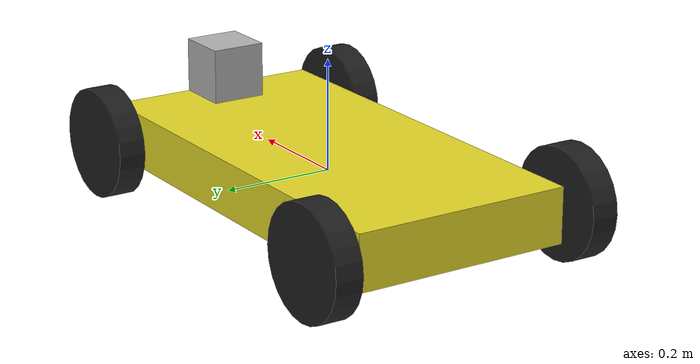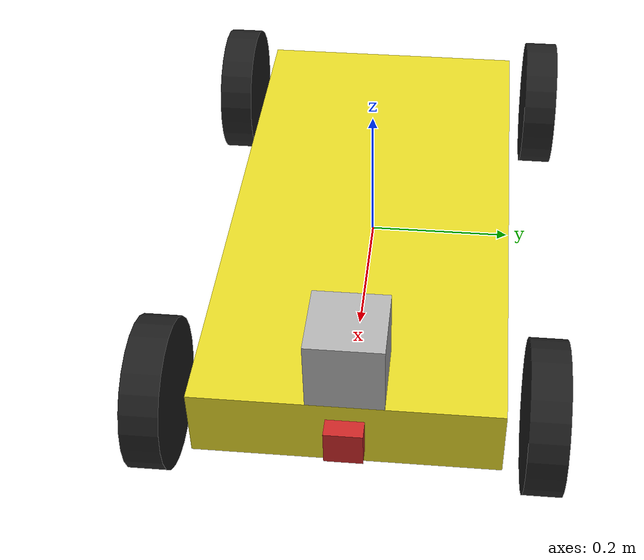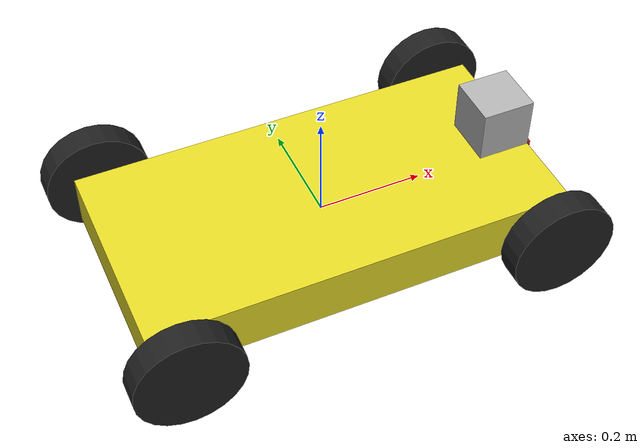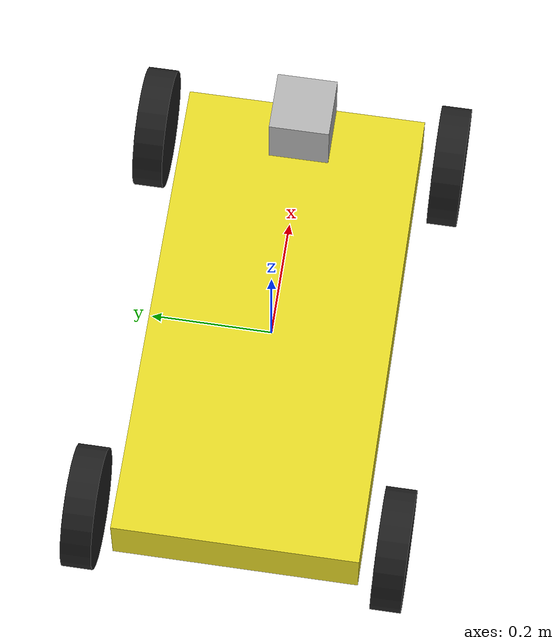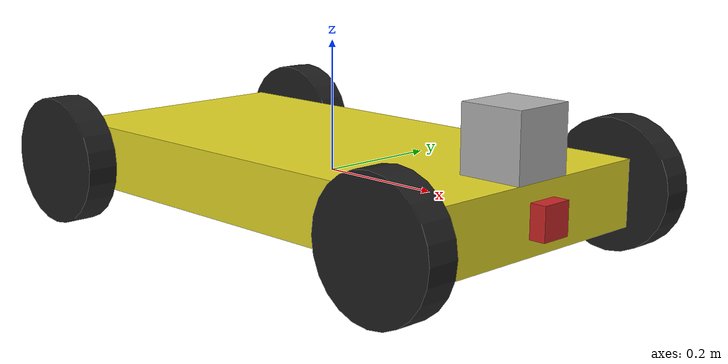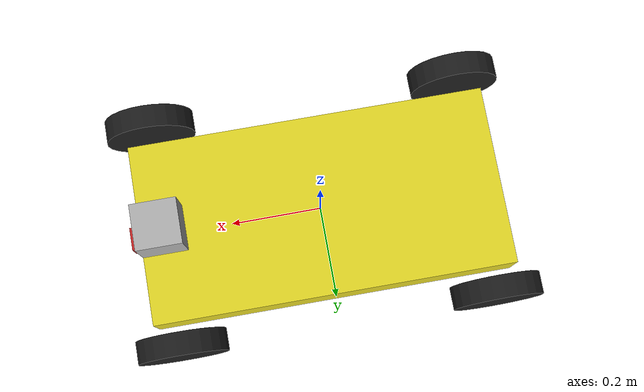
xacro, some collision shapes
<?xml version='1.0'?>

<robot name="my_robot" xmlns:xacro="http://www.ros.org/wiki/xacro">

<xacro:include filename="$(find my_robot)/urdf/my_robot.gazebo" />

  <link name="robot_footprint"></link>

  <joint name="robot_footprint_joint" type="fixed">
    <origin xyz="0 0 0" rpy="0 0 0" />
    <parent link="robot_footprint"/>
    <child link="chassis" />
  </joint>

  <link name='chassis'>
    <pose>0 0 0.1 0 0 0</pose>

    <inertial>
      <mass value="15.0"/>
      <origin xyz="0.0 0 0" rpy=" 0 0 0"/>
      <inertia
          ixx="0.1" ixy="0" ixz="0"
          iyy="0.1" iyz="0"
          izz="0.1"
      />
    </inertial>

    <collision name='collision'>
      <origin xyz="0 0 0" rpy=" 0 0 0"/>
      <geometry>
        <box size="0.8 .4 .1"/>
      </geometry>
    </collision>

    <visual name='chassis_visual'>
      <origin xyz="0 0 0" rpy=" 0 0 0"/>
      <geometry>
        <box size="0.8 .4 .1"/>
      </geometry>
    </visual>

  </link>
<!--Start Front Wheels -->

  <link name='left_wheel'>

    <inertial>
      <mass value="5.0"/>
      <origin xyz="0.0 0 0" rpy=" 0 1.5707 1.5707"/>
      <inertia
          ixx="0.1" ixy="0" ixz="0"
          iyy="0.1" iyz="0"
          izz="0.1"
      />
    </inertial>

    <collision name='left_wheel_collision'>
      <origin xyz="0.0 0 0" rpy=" 0 1.5707 1.5707"/>
      <geometry>
        <cylinder radius="0.1" length='0.05'/>
      </geometry>
    </collision>

    <visual name='left_wheel_visual'>
      <origin xyz="0 0 0" rpy=" 0 1.5707 1.5707"/>
      <geometry>
        <cylinder radius="0.1" length='0.05'/>
      </geometry>
    </visual>
  </link>

<link name='right_wheel'>

    <inertial>
      <mass value="5.0"/>
      <origin xyz="0.0 0 0" rpy=" 0 1.5707 1.5707"/>
      <inertia
          ixx="0.1" ixy="0" ixz="0"
          iyy="0.1" iyz="0"
          izz="0.1"
      />
    </inertial>

    <collision name='right_wheel_collision'>
      <origin xyz="0.0 0 0" rpy=" 0 1.5707 1.5707"/>
      <geometry>
        <cylinder radius="0.1" length='0.05'/>
      </geometry>
    </collision>

    <visual name='right_wheel_visual'>
      <origin xyz="0.0 0 0" rpy=" 0 1.5707 1.5707"/>
      <geometry>
        <cylinder radius="0.1" length='0.05'/>
      </geometry>
    </visual>

  </link>

  <joint type="continuous" name="left_wheel_hinge">
    <origin xyz="0.35 0.25 0" rpy="0 0 0"/>
    <child link="left_wheel"/>
    <parent link="chassis"/>
    <axis xyz="0 1 0" rpy="0 0 0"/>
    <limit effort="10000" velocity="1000"/>
    <dynamics damping="1.0" friction="1.0"/>
  </joint>

  <joint type="continuous" name="right_wheel_hinge">
    <origin xyz="0.35 -0.25 0" rpy="0 0 0"/>
    <child link="right_wheel"/>
    <parent link="chassis"/>
    <axis xyz="0 1 0" rpy="0 0 0"/>
    <limit effort="10000" velocity="1000"/>
    <dynamics damping="1.0" friction="1.0"/>
  </joint>

<!--Start Back -->

  <link name='left_wheel_back'>

    <inertial>
      <mass value="5.0"/>
      <origin xyz="0.0 0 0" rpy=" 0 1.5707 1.5707"/>
      <inertia
          ixx="0.1" ixy="0" ixz="0"
          iyy="0.1" iyz="0"
          izz="0.1"
      />
    </inertial>

    <collision name='left_wheel_back_collision'>
      <origin xyz="0.0 0 0" rpy=" 0 1.5707 1.5707"/>
      <geometry>
        <cylinder radius="0.1" length='0.05'/>
      </geometry>
    </collision>

    <visual name='left_wheel_back_visual'>
      <origin xyz="0 0 0" rpy=" 0 1.5707 1.5707"/>
      <geometry>
        <cylinder radius="0.1" length='0.05'/>
      </geometry>
    </visual>

  </link>

<link name='right_wheel_back'>

    <inertial>
      <mass value="5.0"/>
      <origin xyz="0.0 0 0" rpy=" 0 1.5707 1.5707"/>
      <inertia
          ixx="0.1" ixy="0" ixz="0"
          iyy="0.1" iyz="0"
          izz="0.1"
      />
    </inertial>

    <collision name='right_wheel_back_collision'>
      <origin xyz="0.0 0 0" rpy=" 0 1.5707 1.5707"/>
      <geometry>
        <cylinder radius="0.1" length='0.05'/>
      </geometry>
    </collision>

    <visual name='right_wheel_back_visual'>
      <origin xyz="0.0 0 0" rpy=" 0 1.5707 1.5707"/>
      <geometry>
        <cylinder radius="0.1" length='0.05'/>
      </geometry>
    </visual>

  </link>

  <joint type="continuous" name="left_wheel_back_hinge">
    <origin xyz="-0.35 0.25 0" rpy="0 0 0"/>
    <child link="left_wheel_back"/>
    <parent link="chassis"/>
    <axis xyz="0 1 0" rpy="0 0 0"/>
    <limit effort="10000" velocity="1000"/>
    <dynamics damping="1.0" friction="1.0"/>
  </joint>

  <joint type="continuous" name="right_wheel_back_hinge">
    <origin xyz="-0.35 -0.25 0" rpy="0 0 0"/>
    <child link="right_wheel_back"/>
    <parent link="chassis"/>
    <axis xyz="0 1 0" rpy="0 0 0"/>
    <limit effort="10000" velocity="1000"/>
    <dynamics damping="1.0" friction="1.0"/>
  </joint>

<!--Start Sensors -->

  <link name='camera'>

    <inertial>
      <mass value="0.1"/>
      <origin xyz="0 0 0" rpy=" 0 0 0"/>
      <inertia
          ixx="1e-6" ixy="0" ixz="0"
          iyy="1e-6" iyz="0"
          izz="1e-6"
      />
    </inertial>

    <collision name='camera_collision'>
      <origin xyz="0 0 0" rpy=" 0 0 0"/>
      <geometry>
        <box size='0.05 0.05 0.05'/>
      </geometry>
    </collision>

    <visual name='camera_visual'>
      <origin xyz="0.0 0 0" rpy=" 0 0 0"/>
      <geometry>
        <box size="0.05 0.05 0.05"/>
      </geometry>
    </visual>

  </link>

  <joint type="fixed" name="camera_joint">
    <origin xyz="0.4 0 0" rpy="0 0 0"/>
    <child link="camera"/>
    <parent link="chassis"/>
    <axis xyz="0 1 0" rpy="0 0 0"/>
  </joint>

<link name='hokuyo'>

    <inertial>
      <mass value="0.1"/>
      <origin xyz="0.0 0 0" rpy=" 0 0 0"/>
      <inertia
          ixx="1e-6" ixy="0" ixz="0"
          iyy="1e-6" iyz="0"
          izz="1e-6"
      />
    </inertial>

    <collision name='hokuyo_collision'>
      <origin xyz="0 0 0" rpy=" 0 0 0"/>
      <geometry>
        <box size='0.1 0.1 0.1'/>
      </geometry>
    </collision>

    <visual name='hokuyo_visual'>
      <origin xyz="0.0 0 0" rpy=" 0 0 0"/>
      <geometry>
        <mesh filename="package://my_robot/meshes/hokuyo.dae"/>
      </geometry>
    </visual>

  </link>

  <joint type="fixed" name="hokuyo_joint">
    <origin xyz="0.35 0 0.1" rpy="0 0 0"/>
    <child link="hokuyo"/>
    <parent link="chassis"/>
    <axis xyz="0 1 0" rpy="0 0 0"/>
  </joint>

<!--Transmission and actuators-->
  <transmission name="tran1">
    <type>transmission_interface/SimpleTransmission</type>
    <joint name="right_wheel_hinge">
      <hardwareInterface>hardware_interface/EffortJointInterface</hardwareInterface>
    </joint>
    <actuator name="motor1">
      <mechanicalReduction>1</mechanicalReduction>
	<hardwareInterface>EffortJointInterface</hardwareInterface>
    </actuator>
  </transmission>

  <transmission name="tran2">
    <type>transmission_interface/SimpleTransmission</type>
    <joint name="left_wheel_hinge">
      <hardwareInterface>hardware_interface/EffortJointInterface</hardwareInterface>
    </joint>
    <actuator name="motor2">
      <mechanicalReduction>1</mechanicalReduction>
	<hardwareInterface>EffortJointInterface</hardwareInterface>
    </actuator>
  </transmission>

  <transmission name="tran3">
    <type>transmission_interface/SimpleTransmission</type>
    <joint name="right_wheel_back_hinge">
      <hardwareInterface>hardware_interface/EffortJointInterface</hardwareInterface>
    </joint>
    <actuator name="motor3">
      <mechanicalReduction>1</mechanicalReduction>
	<hardwareInterface>EffortJointInterface</hardwareInterface>
    </actuator>
  </transmission>

  <transmission name="tran4">
    <type>transmission_interface/SimpleTransmission</type>
    <joint name="left_wheel_back_hinge">
      <hardwareInterface>hardware_interface/EffortJointInterface</hardwareInterface>
    </joint>
    <actuator name="motor4">
      <mechanicalReduction>1</mechanicalReduction>
	<hardwareInterface>EffortJointInterface</hardwareInterface>
    </actuator>
  </transmission>

</robot>
